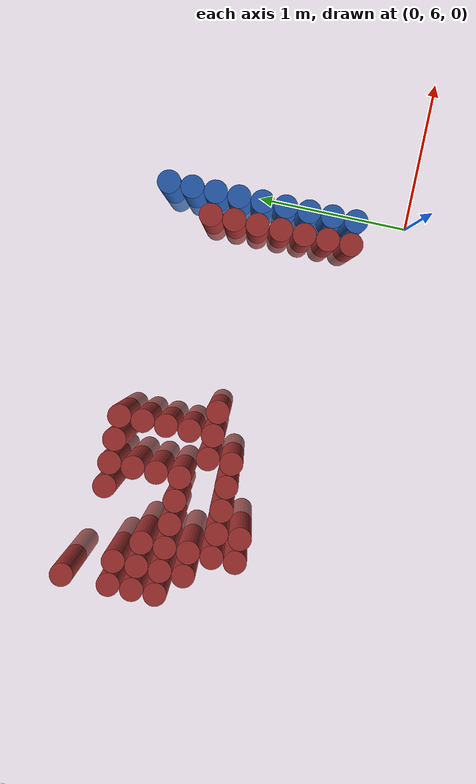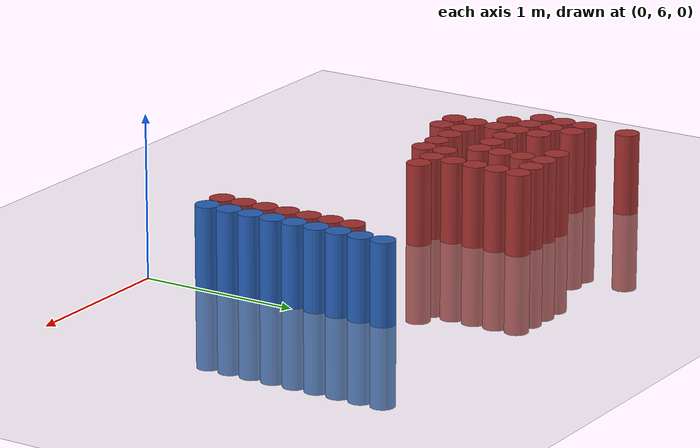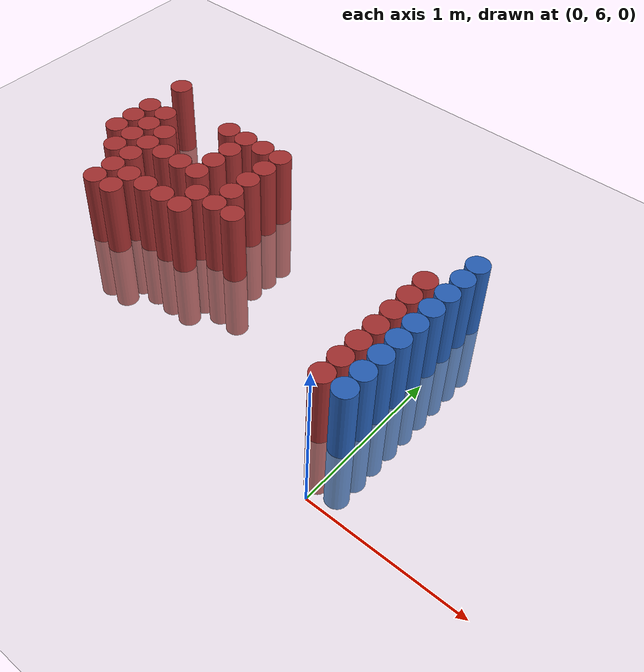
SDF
<sdf version="1.6">
 <world name="default">
  <model name="ground_plane">
   <static>1</static>
   <link name="link">
    <collision name="collision">
     <geometry><plane><normal>0 0 1</normal><size>100 100</size></plane></geometry>
     <surface><friction><ode><mu>100</mu><mu2>50</mu2></ode></friction></surface>
    </collision>
    <visual name="visual">
     <cast_shadows>0</cast_shadows>
     <geometry><plane><normal>0 0 1</normal><size>100 100</size></plane></geometry>
     <material>
      <script><uri>file://media/materials/scripts/gazebo.material</uri><name>Gazebo/Grey</name></script>
     </material>
    </visual>
   </link>
  </model>
  <model name="unit_cylinder_222">
   <static>1</static>
   <pose>-2.625000 7.125000 0.000000 0.000000 0.000000 0.000000</pose>
   <link name="link">
    <inertial>
     <mass>1</mass>
     <inertia><ixx>0.145833</ixx><ixy>0</ixy><ixz>0</ixz><iyy>0.145833</iyy><iyz>0</iyz><izz>0.125</izz></inertia>
    </inertial>
    <collision name="collision">
     <geometry><cylinder><radius>0.075000</radius><length>1</length></cylinder></geometry>
    </collision>
    <visual name="visual">
     <geometry><cylinder><radius>0.075000</radius><length>1</length></cylinder></geometry>
     <material>
      <ambient>0.648000 0.192000 0.192000 1</ambient>
      <diffuse>0.648000 0.192000 0.192000 1</diffuse>
     </material>
     <material>
      <script><name>Gazebo/Grey</name><uri>file://media/materials/scripts/gazebo.material</uri></script>
     </material>
    </visual>
   </link>
  </model>
  <model name="unit_cylinder_223">
   <static>1</static>
   <pose>-2.625000 7.275000 0.000000 0.000000 0.000000 0.000000</pose>
   <link name="link">
    <inertial>
     <mass>1</mass>
     <inertia><ixx>0.145833</ixx><ixy>0</ixy><ixz>0</ixz><iyy>0.145833</iyy><iyz>0</iyz><izz>0.125</izz></inertia>
    </inertial>
    <collision name="collision">
     <geometry><cylinder><radius>0.075000</radius><length>1</length></cylinder></geometry>
    </collision>
    <visual name="visual">
     <geometry><cylinder><radius>0.075000</radius><length>1</length></cylinder></geometry>
     <material>
      <ambient>0.648000 0.192000 0.192000 1</ambient>
      <diffuse>0.648000 0.192000 0.192000 1</diffuse>
     </material>
     <material>
      <script><name>Gazebo/Grey</name><uri>file://media/materials/scripts/gazebo.material</uri></script>
     </material>
    </visual>
   </link>
  </model>
  <model name="unit_cylinder_224">
   <static>1</static>
   <pose>-2.625000 7.425000 0.000000 0.000000 0.000000 0.000000</pose>
   <link name="link">
    <inertial>
     <mass>1</mass>
     <inertia><ixx>0.145833</ixx><ixy>0</ixy><ixz>0</ixz><iyy>0.145833</iyy><iyz>0</iyz><izz>0.125</izz></inertia>
    </inertial>
    <collision name="collision">
     <geometry><cylinder><radius>0.075000</radius><length>1</length></cylinder></geometry>
    </collision>
    <visual name="visual">
     <geometry><cylinder><radius>0.075000</radius><length>1</length></cylinder></geometry>
     <material>
      <ambient>0.648000 0.192000 0.192000 1</ambient>
      <diffuse>0.648000 0.192000 0.192000 1</diffuse>
     </material>
     <material>
      <script><name>Gazebo/Grey</name><uri>file://media/materials/scripts/gazebo.material</uri></script>
     </material>
    </visual>
   </link>
  </model>
  <model name="unit_cylinder_225">
   <static>1</static>
   <pose>-2.625000 7.725000 0.000000 0.000000 0.000000 0.000000</pose>
   <link name="link">
    <inertial>
     <mass>1</mass>
     <inertia><ixx>0.145833</ixx><ixy>0</ixy><ixz>0</ixz><iyy>0.145833</iyy><iyz>0</iyz><izz>0.125</izz></inertia>
    </inertial>
    <collision name="collision">
     <geometry><cylinder><radius>0.075000</radius><length>1</length></cylinder></geometry>
    </collision>
    <visual name="visual">
     <geometry><cylinder><radius>0.075000</radius><length>1</length></cylinder></geometry>
     <material>
      <ambient>0.648000 0.192000 0.192000 1</ambient>
      <diffuse>0.648000 0.192000 0.192000 1</diffuse>
     </material>
     <material>
      <script><name>Gazebo/Grey</name><uri>file://media/materials/scripts/gazebo.material</uri></script>
     </material>
    </visual>
   </link>
  </model>
  <model name="unit_cylinder_226">
   <static>1</static>
   <pose>-2.475000 6.975000 0.000000 0.000000 0.000000 0.000000</pose>
   <link name="link">
    <inertial>
     <mass>1</mass>
     <inertia><ixx>0.145833</ixx><ixy>0</ixy><ixz>0</ixz><iyy>0.145833</iyy><iyz>0</iyz><izz>0.125</izz></inertia>
    </inertial>
    <collision name="collision">
     <geometry><cylinder><radius>0.075000</radius><length>1</length></cylinder></geometry>
    </collision>
    <visual name="visual">
     <geometry><cylinder><radius>0.075000</radius><length>1</length></cylinder></geometry>
     <material>
      <ambient>0.648000 0.192000 0.192000 1</ambient>
      <diffuse>0.648000 0.192000 0.192000 1</diffuse>
     </material>
     <material>
      <script><name>Gazebo/Grey</name><uri>file://media/materials/scripts/gazebo.material</uri></script>
     </material>
    </visual>
   </link>
  </model>
  <model name="unit_cylinder_227">
   <static>1</static>
   <pose>-2.475000 7.125000 0.000000 0.000000 0.000000 0.000000</pose>
   <link name="link">
    <inertial>
     <mass>1</mass>
     <inertia><ixx>0.145833</ixx><ixy>0</ixy><ixz>0</ixz><iyy>0.145833</iyy><iyz>0</iyz><izz>0.125</izz></inertia>
    </inertial>
    <collision name="collision">
     <geometry><cylinder><radius>0.075000</radius><length>1</length></cylinder></geometry>
    </collision>
    <visual name="visual">
     <geometry><cylinder><radius>0.075000</radius><length>1</length></cylinder></geometry>
     <material>
      <ambient>0.648000 0.192000 0.192000 1</ambient>
      <diffuse>0.648000 0.192000 0.192000 1</diffuse>
     </material>
     <material>
      <script><name>Gazebo/Grey</name><uri>file://media/materials/scripts/gazebo.material</uri></script>
     </material>
    </visual>
   </link>
  </model>
  <model name="unit_cylinder_228">
   <static>1</static>
   <pose>-2.475000 7.275000 0.000000 0.000000 0.000000 0.000000</pose>
   <link name="link">
    <inertial>
     <mass>1</mass>
     <inertia><ixx>0.145833</ixx><ixy>0</ixy><ixz>0</ixz><iyy>0.145833</iyy><iyz>0</iyz><izz>0.125</izz></inertia>
    </inertial>
    <collision name="collision">
     <geometry><cylinder><radius>0.075000</radius><length>1</length></cylinder></geometry>
    </collision>
    <visual name="visual">
     <geometry><cylinder><radius>0.075000</radius><length>1</length></cylinder></geometry>
     <material>
      <ambient>0.648000 0.192000 0.192000 1</ambient>
      <diffuse>0.648000 0.192000 0.192000 1</diffuse>
     </material>
     <material>
      <script><name>Gazebo/Grey</name><uri>file://media/materials/scripts/gazebo.material</uri></script>
     </material>
    </visual>
   </link>
  </model>
  <model name="unit_cylinder_229">
   <static>1</static>
   <pose>-2.475000 7.425000 0.000000 0.000000 0.000000 0.000000</pose>
   <link name="link">
    <inertial>
     <mass>1</mass>
     <inertia><ixx>0.145833</ixx><ixy>0</ixy><ixz>0</ixz><iyy>0.145833</iyy><iyz>0</iyz><izz>0.125</izz></inertia>
    </inertial>
    <collision name="collision">
     <geometry><cylinder><radius>0.075000</radius><length>1</length></cylinder></geometry>
    </collision>
    <visual name="visual">
     <geometry><cylinder><radius>0.075000</radius><length>1</length></cylinder></geometry>
     <material>
      <ambient>0.648000 0.192000 0.192000 1</ambient>
      <diffuse>0.648000 0.192000 0.192000 1</diffuse>
     </material>
     <material>
      <script><name>Gazebo/Grey</name><uri>file://media/materials/scripts/gazebo.material</uri></script>
     </material>
    </visual>
   </link>
  </model>
  <model name="unit_cylinder_231">
   <static>1</static>
   <pose>-2.325000 6.675000 0.000000 0.000000 0.000000 0.000000</pose>
   <link name="link">
    <inertial>
     <mass>1</mass>
     <inertia><ixx>0.145833</ixx><ixy>0</ixy><ixz>0</ixz><iyy>0.145833</iyy><iyz>0</iyz><izz>0.125</izz></inertia>
    </inertial>
    <collision name="collision">
     <geometry><cylinder><radius>0.075000</radius><length>1</length></cylinder></geometry>
    </collision>
    <visual name="visual">
     <geometry><cylinder><radius>0.075000</radius><length>1</length></cylinder></geometry>
     <material>
      <ambient>0.648000 0.192000 0.192000 1</ambient>
      <diffuse>0.648000 0.192000 0.192000 1</diffuse>
     </material>
     <material>
      <script><name>Gazebo/Grey</name><uri>file://media/materials/scripts/gazebo.material</uri></script>
     </material>
    </visual>
   </link>
  </model>
  <model name="unit_cylinder_232">
   <static>1</static>
   <pose>-2.325000 6.825000 0.000000 0.000000 0.000000 0.000000</pose>
   <link name="link">
    <inertial>
     <mass>1</mass>
     <inertia><ixx>0.145833</ixx><ixy>0</ixy><ixz>0</ixz><iyy>0.145833</iyy><iyz>0</iyz><izz>0.125</izz></inertia>
    </inertial>
    <collision name="collision">
     <geometry><cylinder><radius>0.075000</radius><length>1</length></cylinder></geometry>
    </collision>
    <visual name="visual">
     <geometry><cylinder><radius>0.075000</radius><length>1</length></cylinder></geometry>
     <material>
      <ambient>0.648000 0.192000 0.192000 1</ambient>
      <diffuse>0.648000 0.192000 0.192000 1</diffuse>
     </material>
     <material>
      <script><name>Gazebo/Grey</name><uri>file://media/materials/scripts/gazebo.material</uri></script>
     </material>
    </visual>
   </link>
  </model>
  <model name="unit_cylinder_233">
   <static>1</static>
   <pose>-2.325000 6.975000 0.000000 0.000000 0.000000 0.000000</pose>
   <link name="link">
    <inertial>
     <mass>1</mass>
     <inertia><ixx>0.145833</ixx><ixy>0</ixy><ixz>0</ixz><iyy>0.145833</iyy><iyz>0</iyz><izz>0.125</izz></inertia>
    </inertial>
    <collision name="collision">
     <geometry><cylinder><radius>0.075000</radius><length>1</length></cylinder></geometry>
    </collision>
    <visual name="visual">
     <geometry><cylinder><radius>0.075000</radius><length>1</length></cylinder></geometry>
     <material>
      <ambient>0.648000 0.192000 0.192000 1</ambient>
      <diffuse>0.648000 0.192000 0.192000 1</diffuse>
     </material>
     <material>
      <script><name>Gazebo/Grey</name><uri>file://media/materials/scripts/gazebo.material</uri></script>
     </material>
    </visual>
   </link>
  </model>
  <model name="unit_cylinder_234">
   <static>1</static>
   <pose>-2.325000 7.125000 0.000000 0.000000 0.000000 0.000000</pose>
   <link name="link">
    <inertial>
     <mass>1</mass>
     <inertia><ixx>0.145833</ixx><ixy>0</ixy><ixz>0</ixz><iyy>0.145833</iyy><iyz>0</iyz><izz>0.125</izz></inertia>
    </inertial>
    <collision name="collision">
     <geometry><cylinder><radius>0.075000</radius><length>1</length></cylinder></geometry>
    </collision>
    <visual name="visual">
     <geometry><cylinder><radius>0.075000</radius><length>1</length></cylinder></geometry>
     <material>
      <ambient>0.648000 0.192000 0.192000 1</ambient>
      <diffuse>0.648000 0.192000 0.192000 1</diffuse>
     </material>
     <material>
      <script><name>Gazebo/Grey</name><uri>file://media/materials/scripts/gazebo.material</uri></script>
     </material>
    </visual>
   </link>
  </model>
  <model name="unit_cylinder_235">
   <static>1</static>
   <pose>-2.325000 7.275000 0.000000 0.000000 0.000000 0.000000</pose>
   <link name="link">
    <inertial>
     <mass>1</mass>
     <inertia><ixx>0.145833</ixx><ixy>0</ixy><ixz>0</ixz><iyy>0.145833</iyy><iyz>0</iyz><izz>0.125</izz></inertia>
    </inertial>
    <collision name="collision">
     <geometry><cylinder><radius>0.075000</radius><length>1</length></cylinder></geometry>
    </collision>
    <visual name="visual">
     <geometry><cylinder><radius>0.075000</radius><length>1</length></cylinder></geometry>
     <material>
      <ambient>0.648000 0.192000 0.192000 1</ambient>
      <diffuse>0.648000 0.192000 0.192000 1</diffuse>
     </material>
     <material>
      <script><name>Gazebo/Grey</name><uri>file://media/materials/scripts/gazebo.material</uri></script>
     </material>
    </visual>
   </link>
  </model>
  <model name="unit_cylinder_239">
   <static>1</static>
   <pose>-2.175000 6.675000 0.000000 0.000000 0.000000 0.000000</pose>
   <link name="link">
    <inertial>
     <mass>1</mass>
     <inertia><ixx>0.145833</ixx><ixy>0</ixy><ixz>0</ixz><iyy>0.145833</iyy><iyz>0</iyz><izz>0.125</izz></inertia>
    </inertial>
    <collision name="collision">
     <geometry><cylinder><radius>0.075000</radius><length>1</length></cylinder></geometry>
    </collision>
    <visual name="visual">
     <geometry><cylinder><radius>0.075000</radius><length>1</length></cylinder></geometry>
     <material>
      <ambient>0.648000 0.192000 0.192000 1</ambient>
      <diffuse>0.648000 0.192000 0.192000 1</diffuse>
     </material>
     <material>
      <script><name>Gazebo/Grey</name><uri>file://media/materials/scripts/gazebo.material</uri></script>
     </material>
    </visual>
   </link>
  </model>
  <model name="unit_cylinder_240">
   <static>1</static>
   <pose>-2.175000 6.825000 0.000000 0.000000 0.000000 0.000000</pose>
   <link name="link">
    <inertial>
     <mass>1</mass>
     <inertia><ixx>0.145833</ixx><ixy>0</ixy><ixz>0</ixz><iyy>0.145833</iyy><iyz>0</iyz><izz>0.125</izz></inertia>
    </inertial>
    <collision name="collision">
     <geometry><cylinder><radius>0.075000</radius><length>1</length></cylinder></geometry>
    </collision>
    <visual name="visual">
     <geometry><cylinder><radius>0.075000</radius><length>1</length></cylinder></geometry>
     <material>
      <ambient>0.648000 0.192000 0.192000 1</ambient>
      <diffuse>0.648000 0.192000 0.192000 1</diffuse>
     </material>
     <material>
      <script><name>Gazebo/Grey</name><uri>file://media/materials/scripts/gazebo.material</uri></script>
     </material>
    </visual>
   </link>
  </model>
  <model name="unit_cylinder_241">
   <static>1</static>
   <pose>-2.175000 7.125000 0.000000 0.000000 0.000000 0.000000</pose>
   <link name="link">
    <inertial>
     <mass>1</mass>
     <inertia><ixx>0.145833</ixx><ixy>0</ixy><ixz>0</ixz><iyy>0.145833</iyy><iyz>0</iyz><izz>0.125</izz></inertia>
    </inertial>
    <collision name="collision">
     <geometry><cylinder><radius>0.075000</radius><length>1</length></cylinder></geometry>
    </collision>
    <visual name="visual">
     <geometry><cylinder><radius>0.075000</radius><length>1</length></cylinder></geometry>
     <material>
      <ambient>0.648000 0.192000 0.192000 1</ambient>
      <diffuse>0.648000 0.192000 0.192000 1</diffuse>
     </material>
     <material>
      <script><name>Gazebo/Grey</name><uri>file://media/materials/scripts/gazebo.material</uri></script>
     </material>
    </visual>
   </link>
  </model>
  <model name="unit_cylinder_244">
   <static>1</static>
   <pose>-2.025000 6.825000 0.000000 0.000000 0.000000 0.000000</pose>
   <link name="link">
    <inertial>
     <mass>1</mass>
     <inertia><ixx>0.145833</ixx><ixy>0</ixy><ixz>0</ixz><iyy>0.145833</iyy><iyz>0</iyz><izz>0.125</izz></inertia>
    </inertial>
    <collision name="collision">
     <geometry><cylinder><radius>0.075000</radius><length>1</length></cylinder></geometry>
    </collision>
    <visual name="visual">
     <geometry><cylinder><radius>0.075000</radius><length>1</length></cylinder></geometry>
     <material>
      <ambient>0.648000 0.192000 0.192000 1</ambient>
      <diffuse>0.648000 0.192000 0.192000 1</diffuse>
     </material>
     <material>
      <script><name>Gazebo/Grey</name><uri>file://media/materials/scripts/gazebo.material</uri></script>
     </material>
    </visual>
   </link>
  </model>
  <model name="unit_cylinder_245">
   <static>1</static>
   <pose>-2.025000 7.125000 0.000000 0.000000 0.000000 0.000000</pose>
   <link name="link">
    <inertial>
     <mass>1</mass>
     <inertia><ixx>0.145833</ixx><ixy>0</ixy><ixz>0</ixz><iyy>0.145833</iyy><iyz>0</iyz><izz>0.125</izz></inertia>
    </inertial>
    <collision name="collision">
     <geometry><cylinder><radius>0.075000</radius><length>1</length></cylinder></geometry>
    </collision>
    <visual name="visual">
     <geometry><cylinder><radius>0.075000</radius><length>1</length></cylinder></geometry>
     <material>
      <ambient>0.648000 0.192000 0.192000 1</ambient>
      <diffuse>0.648000 0.192000 0.192000 1</diffuse>
     </material>
     <material>
      <script><name>Gazebo/Grey</name><uri>file://media/materials/scripts/gazebo.material</uri></script>
     </material>
    </visual>
   </link>
  </model>
  <model name="unit_cylinder_246">
   <static>1</static>
   <pose>-2.025000 7.575000 0.000000 0.000000 0.000000 0.000000</pose>
   <link name="link">
    <inertial>
     <mass>1</mass>
     <inertia><ixx>0.145833</ixx><ixy>0</ixy><ixz>0</ixz><iyy>0.145833</iyy><iyz>0</iyz><izz>0.125</izz></inertia>
    </inertial>
    <collision name="collision">
     <geometry><cylinder><radius>0.075000</radius><length>1</length></cylinder></geometry>
    </collision>
    <visual name="visual">
     <geometry><cylinder><radius>0.075000</radius><length>1</length></cylinder></geometry>
     <material>
      <ambient>0.648000 0.192000 0.192000 1</ambient>
      <diffuse>0.648000 0.192000 0.192000 1</diffuse>
     </material>
     <material>
      <script><name>Gazebo/Grey</name><uri>file://media/materials/scripts/gazebo.material</uri></script>
     </material>
    </visual>
   </link>
  </model>
  <model name="unit_cylinder_251">
   <static>1</static>
   <pose>-1.875000 6.825000 0.000000 0.000000 0.000000 0.000000</pose>
   <link name="link">
    <inertial>
     <mass>1</mass>
     <inertia><ixx>0.145833</ixx><ixy>0</ixy><ixz>0</ixz><iyy>0.145833</iyy><iyz>0</iyz><izz>0.125</izz></inertia>
    </inertial>
    <collision name="collision">
     <geometry><cylinder><radius>0.075000</radius><length>1</length></cylinder></geometry>
    </collision>
    <visual name="visual">
     <geometry><cylinder><radius>0.075000</radius><length>1</length></cylinder></geometry>
     <material>
      <ambient>0.648000 0.192000 0.192000 1</ambient>
      <diffuse>0.648000 0.192000 0.192000 1</diffuse>
     </material>
     <material>
      <script><name>Gazebo/Grey</name><uri>file://media/materials/scripts/gazebo.material</uri></script>
     </material>
    </visual>
   </link>
  </model>
  <model name="unit_cylinder_252">
   <static>1</static>
   <pose>-1.875000 7.125000 0.000000 0.000000 0.000000 0.000000</pose>
   <link name="link">
    <inertial>
     <mass>1</mass>
     <inertia><ixx>0.145833</ixx><ixy>0</ixy><ixz>0</ixz><iyy>0.145833</iyy><iyz>0</iyz><izz>0.125</izz></inertia>
    </inertial>
    <collision name="collision">
     <geometry><cylinder><radius>0.075000</radius><length>1</length></cylinder></geometry>
    </collision>
    <visual name="visual">
     <geometry><cylinder><radius>0.075000</radius><length>1</length></cylinder></geometry>
     <material>
      <ambient>0.648000 0.192000 0.192000 1</ambient>
      <diffuse>0.648000 0.192000 0.192000 1</diffuse>
     </material>
     <material>
      <script><name>Gazebo/Grey</name><uri>file://media/materials/scripts/gazebo.material</uri></script>
     </material>
    </visual>
   </link>
  </model>
  <model name="unit_cylinder_253">
   <static>1</static>
   <pose>-1.875000 7.275000 0.000000 0.000000 0.000000 0.000000</pose>
   <link name="link">
    <inertial>
     <mass>1</mass>
     <inertia><ixx>0.145833</ixx><ixy>0</ixy><ixz>0</ixz><iyy>0.145833</iyy><iyz>0</iyz><izz>0.125</izz></inertia>
    </inertial>
    <collision name="collision">
     <geometry><cylinder><radius>0.075000</radius><length>1</length></cylinder></geometry>
    </collision>
    <visual name="visual">
     <geometry><cylinder><radius>0.075000</radius><length>1</length></cylinder></geometry>
     <material>
      <ambient>0.648000 0.192000 0.192000 1</ambient>
      <diffuse>0.648000 0.192000 0.192000 1</diffuse>
     </material>
     <material>
      <script><name>Gazebo/Grey</name><uri>file://media/materials/scripts/gazebo.material</uri></script>
     </material>
    </visual>
   </link>
  </model>
  <model name="unit_cylinder_254">
   <static>1</static>
   <pose>-1.875000 7.425000 0.000000 0.000000 0.000000 0.000000</pose>
   <link name="link">
    <inertial>
     <mass>1</mass>
     <inertia><ixx>0.145833</ixx><ixy>0</ixy><ixz>0</ixz><iyy>0.145833</iyy><iyz>0</iyz><izz>0.125</izz></inertia>
    </inertial>
    <collision name="collision">
     <geometry><cylinder><radius>0.075000</radius><length>1</length></cylinder></geometry>
    </collision>
    <visual name="visual">
     <geometry><cylinder><radius>0.075000</radius><length>1</length></cylinder></geometry>
     <material>
      <ambient>0.648000 0.192000 0.192000 1</ambient>
      <diffuse>0.648000 0.192000 0.192000 1</diffuse>
     </material>
     <material>
      <script><name>Gazebo/Grey</name><uri>file://media/materials/scripts/gazebo.material</uri></script>
     </material>
    </visual>
   </link>
  </model>
  <model name="unit_cylinder_255">
   <static>1</static>
   <pose>-1.875000 7.575000 0.000000 0.000000 0.000000 0.000000</pose>
   <link name="link">
    <inertial>
     <mass>1</mass>
     <inertia><ixx>0.145833</ixx><ixy>0</ixy><ixz>0</ixz><iyy>0.145833</iyy><iyz>0</iyz><izz>0.125</izz></inertia>
    </inertial>
    <collision name="collision">
     <geometry><cylinder><radius>0.075000</radius><length>1</length></cylinder></geometry>
    </collision>
    <visual name="visual">
     <geometry><cylinder><radius>0.075000</radius><length>1</length></cylinder></geometry>
     <material>
      <ambient>0.648000 0.192000 0.192000 1</ambient>
      <diffuse>0.648000 0.192000 0.192000 1</diffuse>
     </material>
     <material>
      <script><name>Gazebo/Grey</name><uri>file://media/materials/scripts/gazebo.material</uri></script>
     </material>
    </visual>
   </link>
  </model>
  <model name="unit_cylinder_263">
   <static>1</static>
   <pose>-1.725000 6.825000 0.000000 0.000000 0.000000 0.000000</pose>
   <link name="link">
    <inertial>
     <mass>1</mass>
     <inertia><ixx>0.145833</ixx><ixy>0</ixy><ixz>0</ixz><iyy>0.145833</iyy><iyz>0</iyz><izz>0.125</izz></inertia>
    </inertial>
    <collision name="collision">
     <geometry><cylinder><radius>0.075000</radius><length>1</length></cylinder></geometry>
    </collision>
    <visual name="visual">
     <geometry><cylinder><radius>0.075000</radius><length>1</length></cylinder></geometry>
     <material>
      <ambient>0.648000 0.192000 0.192000 1</ambient>
      <diffuse>0.648000 0.192000 0.192000 1</diffuse>
     </material>
     <material>
      <script><name>Gazebo/Grey</name><uri>file://media/materials/scripts/gazebo.material</uri></script>
     </material>
    </visual>
   </link>
  </model>
  <model name="unit_cylinder_264">
   <static>1</static>
   <pose>-1.725000 6.975000 0.000000 0.000000 0.000000 0.000000</pose>
   <link name="link">
    <inertial>
     <mass>1</mass>
     <inertia><ixx>0.145833</ixx><ixy>0</ixy><ixz>0</ixz><iyy>0.145833</iyy><iyz>0</iyz><izz>0.125</izz></inertia>
    </inertial>
    <collision name="collision">
     <geometry><cylinder><radius>0.075000</radius><length>1</length></cylinder></geometry>
    </collision>
    <visual name="visual">
     <geometry><cylinder><radius>0.075000</radius><length>1</length></cylinder></geometry>
     <material>
      <ambient>0.648000 0.192000 0.192000 1</ambient>
      <diffuse>0.648000 0.192000 0.192000 1</diffuse>
     </material>
     <material>
      <script><name>Gazebo/Grey</name><uri>file://media/materials/scripts/gazebo.material</uri></script>
     </material>
    </visual>
   </link>
  </model>
  <model name="unit_cylinder_265">
   <static>1</static>
   <pose>-1.725000 7.575000 0.000000 0.000000 0.000000 0.000000</pose>
   <link name="link">
    <inertial>
     <mass>1</mass>
     <inertia><ixx>0.145833</ixx><ixy>0</ixy><ixz>0</ixz><iyy>0.145833</iyy><iyz>0</iyz><izz>0.125</izz></inertia>
    </inertial>
    <collision name="collision">
     <geometry><cylinder><radius>0.075000</radius><length>1</length></cylinder></geometry>
    </collision>
    <visual name="visual">
     <geometry><cylinder><radius>0.075000</radius><length>1</length></cylinder></geometry>
     <material>
      <ambient>0.648000 0.192000 0.192000 1</ambient>
      <diffuse>0.648000 0.192000 0.192000 1</diffuse>
     </material>
     <material>
      <script><name>Gazebo/Grey</name><uri>file://media/materials/scripts/gazebo.material</uri></script>
     </material>
    </visual>
   </link>
  </model>
  <model name="unit_cylinder_274">
   <static>1</static>
   <pose>-1.575000 6.975000 0.000000 0.000000 0.000000 0.000000</pose>
   <link name="link">
    <inertial>
     <mass>1</mass>
     <inertia><ixx>0.145833</ixx><ixy>0</ixy><ixz>0</ixz><iyy>0.145833</iyy><iyz>0</iyz><izz>0.125</izz></inertia>
    </inertial>
    <collision name="collision">
     <geometry><cylinder><radius>0.075000</radius><length>1</length></cylinder></geometry>
    </collision>
    <visual name="visual">
     <geometry><cylinder><radius>0.075000</radius><length>1</length></cylinder></geometry>
     <material>
      <ambient>0.648000 0.192000 0.192000 1</ambient>
      <diffuse>0.648000 0.192000 0.192000 1</diffuse>
     </material>
     <material>
      <script><name>Gazebo/Grey</name><uri>file://media/materials/scripts/gazebo.material</uri></script>
     </material>
    </visual>
   </link>
  </model>
  <model name="unit_cylinder_275">
   <static>1</static>
   <pose>-1.575000 7.125000 0.000000 0.000000 0.000000 0.000000</pose>
   <link name="link">
    <inertial>
     <mass>1</mass>
     <inertia><ixx>0.145833</ixx><ixy>0</ixy><ixz>0</ixz><iyy>0.145833</iyy><iyz>0</iyz><izz>0.125</izz></inertia>
    </inertial>
    <collision name="collision">
     <geometry><cylinder><radius>0.075000</radius><length>1</length></cylinder></geometry>
    </collision>
    <visual name="visual">
     <geometry><cylinder><radius>0.075000</radius><length>1</length></cylinder></geometry>
     <material>
      <ambient>0.648000 0.192000 0.192000 1</ambient>
      <diffuse>0.648000 0.192000 0.192000 1</diffuse>
     </material>
     <material>
      <script><name>Gazebo/Grey</name><uri>file://media/materials/scripts/gazebo.material</uri></script>
     </material>
    </visual>
   </link>
  </model>
  <model name="unit_cylinder_276">
   <static>1</static>
   <pose>-1.575000 7.275000 0.000000 0.000000 0.000000 0.000000</pose>
   <link name="link">
    <inertial>
     <mass>1</mass>
     <inertia><ixx>0.145833</ixx><ixy>0</ixy><ixz>0</ixz><iyy>0.145833</iyy><iyz>0</iyz><izz>0.125</izz></inertia>
    </inertial>
    <collision name="collision">
     <geometry><cylinder><radius>0.075000</radius><length>1</length></cylinder></geometry>
    </collision>
    <visual name="visual">
     <geometry><cylinder><radius>0.075000</radius><length>1</length></cylinder></geometry>
     <material>
      <ambient>0.648000 0.192000 0.192000 1</ambient>
      <diffuse>0.648000 0.192000 0.192000 1</diffuse>
     </material>
     <material>
      <script><name>Gazebo/Grey</name><uri>file://media/materials/scripts/gazebo.material</uri></script>
     </material>
    </visual>
   </link>
  </model>
  <model name="unit_cylinder_277">
   <static>1</static>
   <pose>-1.575000 7.425000 0.000000 0.000000 0.000000 0.000000</pose>
   <link name="link">
    <inertial>
     <mass>1</mass>
     <inertia><ixx>0.145833</ixx><ixy>0</ixy><ixz>0</ixz><iyy>0.145833</iyy><iyz>0</iyz><izz>0.125</izz></inertia>
    </inertial>
    <collision name="collision">
     <geometry><cylinder><radius>0.075000</radius><length>1</length></cylinder></geometry>
    </collision>
    <visual name="visual">
     <geometry><cylinder><radius>0.075000</radius><length>1</length></cylinder></geometry>
     <material>
      <ambient>0.648000 0.192000 0.192000 1</ambient>
      <diffuse>0.648000 0.192000 0.192000 1</diffuse>
     </material>
     <material>
      <script><name>Gazebo/Grey</name><uri>file://media/materials/scripts/gazebo.material</uri></script>
     </material>
    </visual>
   </link>
  </model>
  <model name="unit_cylinder_278">
   <static>1</static>
   <pose>-1.575000 7.575000 0.000000 0.000000 0.000000 0.000000</pose>
   <link name="link">
    <inertial>
     <mass>1</mass>
     <inertia><ixx>0.145833</ixx><ixy>0</ixy><ixz>0</ixz><iyy>0.145833</iyy><iyz>0</iyz><izz>0.125</izz></inertia>
    </inertial>
    <collision name="collision">
     <geometry><cylinder><radius>0.075000</radius><length>1</length></cylinder></geometry>
    </collision>
    <visual name="visual">
     <geometry><cylinder><radius>0.075000</radius><length>1</length></cylinder></geometry>
     <material>
      <ambient>0.648000 0.192000 0.192000 1</ambient>
      <diffuse>0.648000 0.192000 0.192000 1</diffuse>
     </material>
     <material>
      <script><name>Gazebo/Grey</name><uri>file://media/materials/scripts/gazebo.material</uri></script>
     </material>
    </visual>
   </link>
  </model>
  <model name="unit_cylinder_286">
   <static>1</static>
   <pose>-1.425000 6.975000 0.000000 0.000000 0.000000 0.000000</pose>
   <link name="link">
    <inertial>
     <mass>1</mass>
     <inertia><ixx>0.145833</ixx><ixy>0</ixy><ixz>0</ixz><iyy>0.145833</iyy><iyz>0</iyz><izz>0.125</izz></inertia>
    </inertial>
    <collision name="collision">
     <geometry><cylinder><radius>0.075000</radius><length>1</length></cylinder></geometry>
    </collision>
    <visual name="visual">
     <geometry><cylinder><radius>0.075000</radius><length>1</length></cylinder></geometry>
     <material>
      <ambient>0.648000 0.192000 0.192000 1</ambient>
      <diffuse>0.648000 0.192000 0.192000 1</diffuse>
     </material>
     <material>
      <script><name>Gazebo/Grey</name><uri>file://media/materials/scripts/gazebo.material</uri></script>
     </material>
    </visual>
   </link>
  </model>
  <model name="unit_cylinder_297">
   <static>1</static>
   <pose>-0.225000 6.375000 0.000000 0.000000 0.000000 0.000000</pose>
   <link name="link">
    <inertial>
     <mass>1</mass>
     <inertia><ixx>0.145833</ixx><ixy>0</ixy><ixz>0</ixz><iyy>0.145833</iyy><iyz>0</iyz><izz>0.125</izz></inertia>
    </inertial>
    <collision name="collision">
     <geometry><cylinder><radius>0.075000</radius><length>1</length></cylinder></geometry>
    </collision>
    <visual name="visual">
     <geometry><cylinder><radius>0.075000</radius><length>1</length></cylinder></geometry>
     <material>
      <ambient>0.648000 0.192000 0.192000 1</ambient>
      <diffuse>0.648000 0.192000 0.192000 1</diffuse>
     </material>
     <material>
      <script><name>Gazebo/Grey</name><uri>file://media/materials/scripts/gazebo.material</uri></script>
     </material>
    </visual>
   </link>
  </model>
  <model name="unit_cylinder_298">
   <static>1</static>
   <pose>-0.225000 6.525000 0.000000 0.000000 0.000000 0.000000</pose>
   <link name="link">
    <inertial>
     <mass>1</mass>
     <inertia><ixx>0.145833</ixx><ixy>0</ixy><ixz>0</ixz><iyy>0.145833</iyy><iyz>0</iyz><izz>0.125</izz></inertia>
    </inertial>
    <collision name="collision">
     <geometry><cylinder><radius>0.075000</radius><length>1</length></cylinder></geometry>
    </collision>
    <visual name="visual">
     <geometry><cylinder><radius>0.075000</radius><length>1</length></cylinder></geometry>
     <material>
      <ambient>0.648000 0.192000 0.192000 1</ambient>
      <diffuse>0.648000 0.192000 0.192000 1</diffuse>
     </material>
     <material>
      <script><name>Gazebo/Grey</name><uri>file://media/materials/scripts/gazebo.material</uri></script>
     </material>
    </visual>
   </link>
  </model>
  <model name="unit_cylinder_299">
   <static>1</static>
   <pose>-0.225000 6.675000 0.000000 0.000000 0.000000 0.000000</pose>
   <link name="link">
    <inertial>
     <mass>1</mass>
     <inertia><ixx>0.145833</ixx><ixy>0</ixy><ixz>0</ixz><iyy>0.145833</iyy><iyz>0</iyz><izz>0.125</izz></inertia>
    </inertial>
    <collision name="collision">
     <geometry><cylinder><radius>0.075000</radius><length>1</length></cylinder></geometry>
    </collision>
    <visual name="visual">
     <geometry><cylinder><radius>0.075000</radius><length>1</length></cylinder></geometry>
     <material>
      <ambient>0.648000 0.192000 0.192000 1</ambient>
      <diffuse>0.648000 0.192000 0.192000 1</diffuse>
     </material>
     <material>
      <script><name>Gazebo/Grey</name><uri>file://media/materials/scripts/gazebo.material</uri></script>
     </material>
    </visual>
   </link>
  </model>
  <model name="unit_cylinder_300">
   <static>1</static>
   <pose>-0.225000 6.825000 0.000000 0.000000 0.000000 0.000000</pose>
   <link name="link">
    <inertial>
     <mass>1</mass>
     <inertia><ixx>0.145833</ixx><ixy>0</ixy><ixz>0</ixz><iyy>0.145833</iyy><iyz>0</iyz><izz>0.125</izz></inertia>
    </inertial>
    <collision name="collision">
     <geometry><cylinder><radius>0.075000</radius><length>1</length></cylinder></geometry>
    </collision>
    <visual name="visual">
     <geometry><cylinder><radius>0.075000</radius><length>1</length></cylinder></geometry>
     <material>
      <ambient>0.648000 0.192000 0.192000 1</ambient>
      <diffuse>0.648000 0.192000 0.192000 1</diffuse>
     </material>
     <material>
      <script><name>Gazebo/Grey</name><uri>file://media/materials/scripts/gazebo.material</uri></script>
     </material>
    </visual>
   </link>
  </model>
  <model name="unit_cylinder_301">
   <static>1</static>
   <pose>-0.225000 6.975000 0.000000 0.000000 0.000000 0.000000</pose>
   <link name="link">
    <inertial>
     <mass>1</mass>
     <inertia><ixx>0.145833</ixx><ixy>0</ixy><ixz>0</ixz><iyy>0.145833</iyy><iyz>0</iyz><izz>0.125</izz></inertia>
    </inertial>
    <collision name="collision">
     <geometry><cylinder><radius>0.075000</radius><length>1</length></cylinder></geometry>
    </collision>
    <visual name="visual">
     <geometry><cylinder><radius>0.075000</radius><length>1</length></cylinder></geometry>
     <material>
      <ambient>0.648000 0.192000 0.192000 1</ambient>
      <diffuse>0.648000 0.192000 0.192000 1</diffuse>
     </material>
     <material>
      <script><name>Gazebo/Grey</name><uri>file://media/materials/scripts/gazebo.material</uri></script>
     </material>
    </visual>
   </link>
  </model>
  <model name="unit_cylinder_302">
   <static>1</static>
   <pose>-0.225000 7.125000 0.000000 0.000000 0.000000 0.000000</pose>
   <link name="link">
    <inertial>
     <mass>1</mass>
     <inertia><ixx>0.145833</ixx><ixy>0</ixy><ixz>0</ixz><iyy>0.145833</iyy><iyz>0</iyz><izz>0.125</izz></inertia>
    </inertial>
    <collision name="collision">
     <geometry><cylinder><radius>0.075000</radius><length>1</length></cylinder></geometry>
    </collision>
    <visual name="visual">
     <geometry><cylinder><radius>0.075000</radius><length>1</length></cylinder></geometry>
     <material>
      <ambient>0.648000 0.192000 0.192000 1</ambient>
      <diffuse>0.648000 0.192000 0.192000 1</diffuse>
     </material>
     <material>
      <script><name>Gazebo/Grey</name><uri>file://media/materials/scripts/gazebo.material</uri></script>
     </material>
    </visual>
   </link>
  </model>
  <model name="unit_cylinder_303">
   <static>1</static>
   <pose>-0.225000 7.275000 0.000000 0.000000 0.000000 0.000000</pose>
   <link name="link">
    <inertial>
     <mass>1</mass>
     <inertia><ixx>0.145833</ixx><ixy>0</ixy><ixz>0</ixz><iyy>0.145833</iyy><iyz>0</iyz><izz>0.125</izz></inertia>
    </inertial>
    <collision name="collision">
     <geometry><cylinder><radius>0.075000</radius><length>1</length></cylinder></geometry>
    </collision>
    <visual name="visual">
     <geometry><cylinder><radius>0.075000</radius><length>1</length></cylinder></geometry>
     <material>
      <ambient>0.648000 0.192000 0.192000 1</ambient>
      <diffuse>0.648000 0.192000 0.192000 1</diffuse>
     </material>
     <material>
      <script><name>Gazebo/Grey</name><uri>file://media/materials/scripts/gazebo.material</uri></script>
     </material>
    </visual>
   </link>
  </model>
  <model name="unit_cylinder_320">
   <static>1</static>
   <pose>-0.075000 6.375000 0.000000 0.000000 0.000000 0.000000</pose>
   <link name="link">
    <inertial>
     <mass>1</mass>
     <inertia><ixx>0.145833</ixx><ixy>0</ixy><ixz>0</ixz><iyy>0.145833</iyy><iyz>0</iyz><izz>0.125</izz></inertia>
    </inertial>
    <collision name="collision">
     <geometry><cylinder><radius>0.075000</radius><length>1</length></cylinder></geometry>
    </collision>
    <visual name="visual">
     <geometry><cylinder><radius>0.075000</radius><length>1</length></cylinder></geometry>
     <material>
      <ambient>0.152000 0.379000 0.720000 1</ambient>
      <diffuse>0.152000 0.379000 0.720000 1</diffuse>
     </material>
     <material>
      <script><name>Gazebo/Grey</name><uri>file://media/materials/scripts/gazebo.material</uri></script>
     </material>
    </visual>
   </link>
  </model>
  <model name="unit_cylinder_321">
   <static>1</static>
   <pose>-0.075000 6.525000 0.000000 0.000000 0.000000 0.000000</pose>
   <link name="link">
    <inertial>
     <mass>1</mass>
     <inertia><ixx>0.145833</ixx><ixy>0</ixy><ixz>0</ixz><iyy>0.145833</iyy><iyz>0</iyz><izz>0.125</izz></inertia>
    </inertial>
    <collision name="collision">
     <geometry><cylinder><radius>0.075000</radius><length>1</length></cylinder></geometry>
    </collision>
    <visual name="visual">
     <geometry><cylinder><radius>0.075000</radius><length>1</length></cylinder></geometry>
     <material>
      <ambient>0.152000 0.379000 0.720000 1</ambient>
      <diffuse>0.152000 0.379000 0.720000 1</diffuse>
     </material>
     <material>
      <script><name>Gazebo/Grey</name><uri>file://media/materials/scripts/gazebo.material</uri></script>
     </material>
    </visual>
   </link>
  </model>
  <model name="unit_cylinder_322">
   <static>1</static>
   <pose>-0.075000 6.675000 0.000000 0.000000 0.000000 0.000000</pose>
   <link name="link">
    <inertial>
     <mass>1</mass>
     <inertia><ixx>0.145833</ixx><ixy>0</ixy><ixz>0</ixz><iyy>0.145833</iyy><iyz>0</iyz><izz>0.125</izz></inertia>
    </inertial>
    <collision name="collision">
     <geometry><cylinder><radius>0.075000</radius><length>1</length></cylinder></geometry>
    </collision>
    <visual name="visual">
     <geometry><cylinder><radius>0.075000</radius><length>1</length></cylinder></geometry>
     <material>
      <ambient>0.152000 0.379000 0.720000 1</ambient>
      <diffuse>0.152000 0.379000 0.720000 1</diffuse>
     </material>
     <material>
      <script><name>Gazebo/Grey</name><uri>file://media/materials/scripts/gazebo.material</uri></script>
     </material>
    </visual>
   </link>
  </model>
  <model name="unit_cylinder_323">
   <static>1</static>
   <pose>-0.075000 6.825000 0.000000 0.000000 0.000000 0.000000</pose>
   <link name="link">
    <inertial>
     <mass>1</mass>
     <inertia><ixx>0.145833</ixx><ixy>0</ixy><ixz>0</ixz><iyy>0.145833</iyy><iyz>0</iyz><izz>0.125</izz></inertia>
    </inertial>
    <collision name="collision">
     <geometry><cylinder><radius>0.075000</radius><length>1</length></cylinder></geometry>
    </collision>
    <visual name="visual">
     <geometry><cylinder><radius>0.075000</radius><length>1</length></cylinder></geometry>
     <material>
      <ambient>0.152000 0.379000 0.720000 1</ambient>
      <diffuse>0.152000 0.379000 0.720000 1</diffuse>
     </material>
     <material>
      <script><name>Gazebo/Grey</name><uri>file://media/materials/scripts/gazebo.material</uri></script>
     </material>
    </visual>
   </link>
  </model>
  <model name="unit_cylinder_324">
   <static>1</static>
   <pose>-0.075000 6.975000 0.000000 0.000000 0.000000 0.000000</pose>
   <link name="link">
    <inertial>
     <mass>1</mass>
     <inertia><ixx>0.145833</ixx><ixy>0</ixy><ixz>0</ixz><iyy>0.145833</iyy><iyz>0</iyz><izz>0.125</izz></inertia>
    </inertial>
    <collision name="collision">
     <geometry><cylinder><radius>0.075000</radius><length>1</length></cylinder></geometry>
    </collision>
    <visual name="visual">
     <geometry><cylinder><radius>0.075000</radius><length>1</length></cylinder></geometry>
     <material>
      <ambient>0.152000 0.379000 0.720000 1</ambient>
      <diffuse>0.152000 0.379000 0.720000 1</diffuse>
     </material>
     <material>
      <script><name>Gazebo/Grey</name><uri>file://media/materials/scripts/gazebo.material</uri></script>
     </material>
    </visual>
   </link>
  </model>
  <model name="unit_cylinder_325">
   <static>1</static>
   <pose>-0.075000 7.125000 0.000000 0.000000 0.000000 0.000000</pose>
   <link name="link">
    <inertial>
     <mass>1</mass>
     <inertia><ixx>0.145833</ixx><ixy>0</ixy><ixz>0</ixz><iyy>0.145833</iyy><iyz>0</iyz><izz>0.125</izz></inertia>
    </inertial>
    <collision name="collision">
     <geometry><cylinder><radius>0.075000</radius><length>1</length></cylinder></geometry>
    </collision>
    <visual name="visual">
     <geometry><cylinder><radius>0.075000</radius><length>1</length></cylinder></geometry>
     <material>
      <ambient>0.152000 0.379000 0.720000 1</ambient>
      <diffuse>0.152000 0.379000 0.720000 1</diffuse>
     </material>
     <material>
      <script><name>Gazebo/Grey</name><uri>file://media/materials/scripts/gazebo.material</uri></script>
     </material>
    </visual>
   </link>
  </model>
  <model name="unit_cylinder_326">
   <static>1</static>
   <pose>-0.075000 7.275000 0.000000 0.000000 0.000000 0.000000</pose>
   <link name="link">
    <inertial>
     <mass>1</mass>
     <inertia><ixx>0.145833</ixx><ixy>0</ixy><ixz>0</ixz><iyy>0.145833</iyy><iyz>0</iyz><izz>0.125</izz></inertia>
    </inertial>
    <collision name="collision">
     <geometry><cylinder><radius>0.075000</radius><length>1</length></cylinder></geometry>
    </collision>
    <visual name="visual">
     <geometry><cylinder><radius>0.075000</radius><length>1</length></cylinder></geometry>
     <material>
      <ambient>0.152000 0.379000 0.720000 1</ambient>
      <diffuse>0.152000 0.379000 0.720000 1</diffuse>
     </material>
     <material>
      <script><name>Gazebo/Grey</name><uri>file://media/materials/scripts/gazebo.material</uri></script>
     </material>
    </visual>
   </link>
  </model>
  <model name="unit_cylinder_327">
   <static>1</static>
   <pose>-0.075000 7.425000 0.000000 0.000000 0.000000 0.000000</pose>
   <link name="link">
    <inertial>
     <mass>1</mass>
     <inertia><ixx>0.145833</ixx><ixy>0</ixy><ixz>0</ixz><iyy>0.145833</iyy><iyz>0</iyz><izz>0.125</izz></inertia>
    </inertial>
    <collision name="collision">
     <geometry><cylinder><radius>0.075000</radius><length>1</length></cylinder></geometry>
    </collision>
    <visual name="visual">
     <geometry><cylinder><radius>0.075000</radius><length>1</length></cylinder></geometry>
     <material>
      <ambient>0.152000 0.379000 0.720000 1</ambient>
      <diffuse>0.152000 0.379000 0.720000 1</diffuse>
     </material>
     <material>
      <script><name>Gazebo/Grey</name><uri>file://media/materials/scripts/gazebo.material</uri></script>
     </material>
    </visual>
   </link>
  </model>
  <model name="unit_cylinder_328">
   <static>1</static>
   <pose>-0.075000 7.575000 0.000000 0.000000 0.000000 0.000000</pose>
   <link name="link">
    <inertial>
     <mass>1</mass>
     <inertia><ixx>0.145833</ixx><ixy>0</ixy><ixz>0</ixz><iyy>0.145833</iyy><iyz>0</iyz><izz>0.125</izz></inertia>
    </inertial>
    <collision name="collision">
     <geometry><cylinder><radius>0.075000</radius><length>1</length></cylinder></geometry>
    </collision>
    <visual name="visual">
     <geometry><cylinder><radius>0.075000</radius><length>1</length></cylinder></geometry>
     <material>
      <ambient>0.152000 0.379000 0.720000 1</ambient>
      <diffuse>0.152000 0.379000 0.720000 1</diffuse>
     </material>
     <material>
      <script><name>Gazebo/Grey</name><uri>file://media/materials/scripts/gazebo.material</uri></script>
     </material>
    </visual>
   </link>
  </model>
 </world>
</sdf>
